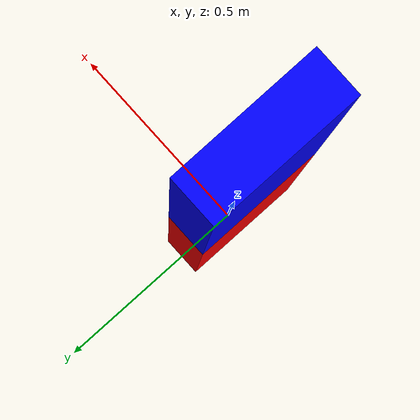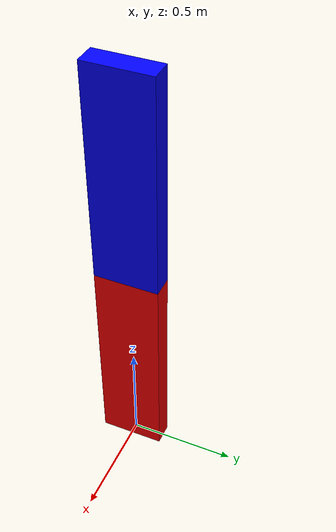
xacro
<?xml version="1.0" ?>

<robot name="xacro_test" xmlns:xacro="http://ros.org/wiki/xacro">
    <xacro:property name="width" value="0.1"/>
    <xacro:property name="length" value="0.3"/>
    <xacro:property name="height" value="1.0"/>
    <xacro:property name="dimension" value="0.1 0.3 1.0"/>

    <xacro:property name="PI" value="3.1415"/>

    <link name="base_link"/>

    <joint name="base_joint" type="fixed">
        <parent link="base_link"/>
        <child link="1st_link"/>
    </joint>

    <link name="1st_link">
        <visual>
            <geometry>
                <box size="${dimension}" rpy="0 0 0"/>
            </geometry>
            <material name="red">
                <color rgba="1.0 0.0 0.0 1.0"/>
            </material>
            <origin xyz="0 0 ${height/2.0}" rpy="0 0 0"/>
        </visual>
    </link>

    <joint name="waist_link" type="revolute">
        <parent link="1st_link"/>
        <child link="2nd_link"/>
        <origin xyz="0 0 ${height}" rpy="0 0 0"/>
        <axis xyz="0 1 0"/>
        <limit lower="-${PI}" upper="${PI}" effort="0" velocity="0"/>
        <dynamics damping="0.1" friction="0"/>
    </joint>

    <link name="2nd_link">
        <visual>
            <geometry>
                <box size="${width} ${length} ${height}" rpy="0 0 0"/>
            </geometry>
            <material name="blue">
                <color rgba="0 0 1 1"/>
            </material>
            <origin xyz="0 0 ${height/2}" rpy="0 0 0"/>
        </visual>
    </link>

</robot>
